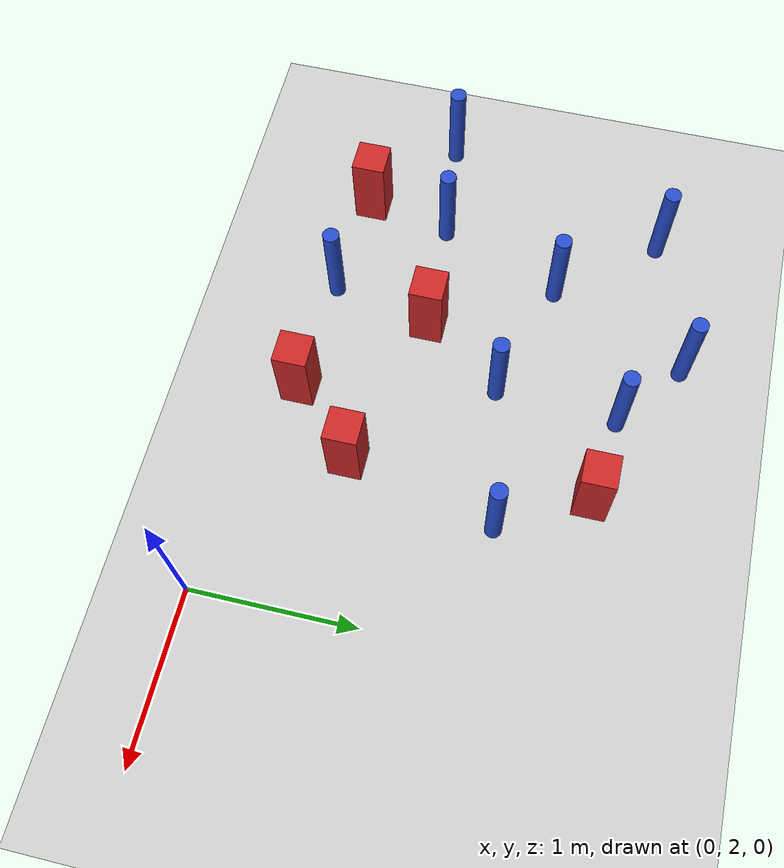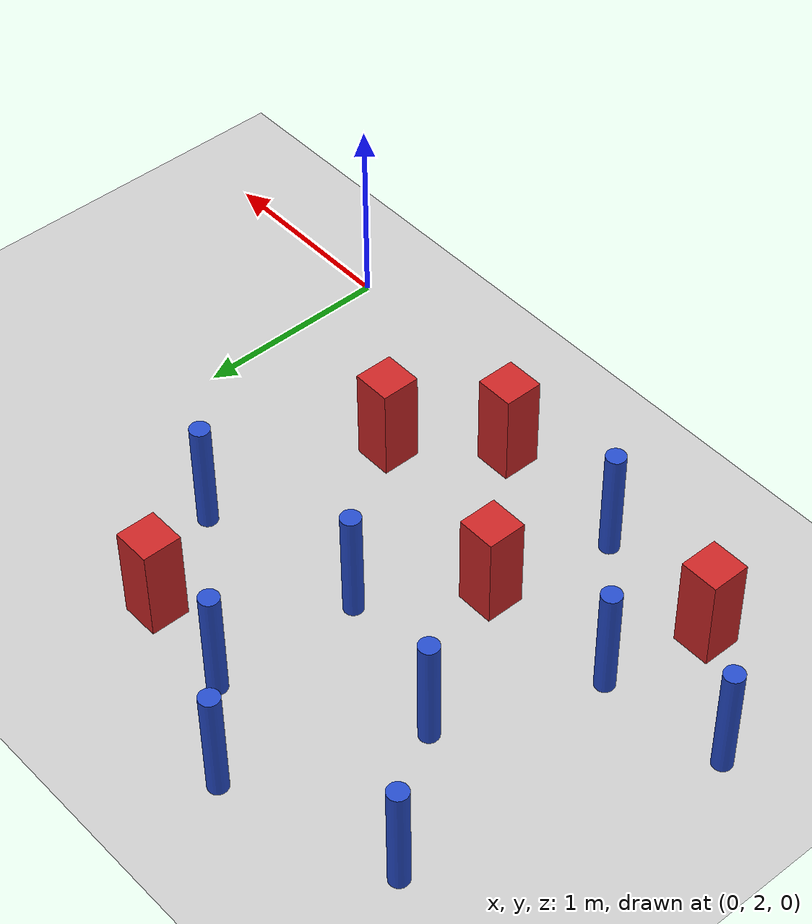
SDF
<sdf version="1.6">
 <world name="default">
  <model name="ground_plane">
   <static>1</static>
   <link name="link">
    <collision name="collision">
     <geometry><plane><normal>0 0 1</normal><size>100 100</size></plane></geometry>
     <surface><friction><ode><mu>100</mu><mu2>50</mu2></ode></friction></surface>
    </collision>
    <visual name="visual">
     <cast_shadows>0</cast_shadows>
     <geometry><plane><normal>0 0 1</normal><size>100 100</size></plane></geometry>
     <material>
      <ambient>1.0 1.0 1.0 1.0</ambient>
      <diffuse>0.8 0.8 0.8 1.0</diffuse>
      <specular>0.01 0.01 0.01 1.000000</specular>
     </material>
    </visual>
   </link>
  </model>
  <model name="pole_obstacle2">
   <static>true</static>
   <pose>-3.29904174645 2.82377356192 -9.47619616065e-06 5.49618799737e-07 2.36310414051e-07 -1.55090534807e-07</pose>
   <link name="link">
    <pose>0 0 0.3 0 -0 0</pose>
    <inertial>
     <mass>1</mass>
     <inertia><ixx>0.145833</ixx><ixy>0</ixy><ixz>0</ixz><iyy>0.145833</iyy><iyz>0</iyz><izz>0.125</izz></inertia>
    </inertial>
    <collision name="collision">
     <geometry><cylinder><radius>0.05</radius><length>.6</length></cylinder></geometry>
    </collision>
    <visual name="visual">
     <geometry><cylinder><radius>0.05</radius><length>.6</length></cylinder></geometry>
     <material>
      <script><name>Gazebo/Blue</name><uri>file://media/materials/scripts/gazebo.material</uri></script>
     </material>
    </visual>
   </link>
  </model>
  <model name="pole_obstacle23">
   <static>true</static>
   <pose>-1.97185046986 4.5103314943 -9.47619616065e-06 5.49618799737e-07 2.36310414064e-07 -1.55090534797e-07</pose>
   <link name="link">
    <pose>0 0 0.3 0 -0 0</pose>
    <inertial>
     <mass>1</mass>
     <inertia><ixx>0.145833</ixx><ixy>0</ixy><ixz>0</ixz><iyy>0.145833</iyy><iyz>0</iyz><izz>0.125</izz></inertia>
    </inertial>
    <collision name="collision">
     <geometry><cylinder><radius>0.05</radius><length>.6</length></cylinder></geometry>
    </collision>
    <visual name="visual">
     <geometry><cylinder><radius>0.05</radius><length>.6</length></cylinder></geometry>
     <material>
      <script><name>Gazebo/Blue</name><uri>file://media/materials/scripts/gazebo.material</uri></script>
     </material>
    </visual>
   </link>
  </model>
  <model name="square_post_obstacle30">
   <static>true</static>
   <pose>-0.958676364007 2.68689497019 -6.11067671241e-07 -5.50515727128e-06 -8.79689657224e-07 2.37013304536e-05</pose>
   <link name="link">
    <pose>0 0 0.25 0 -0 0</pose>
    <inertial>
     <mass>100</mass>
     <inertia>
      <ixx>0.166667</ixx>
      <ixy>0</ixy>
      <ixz>0</ixz>
      <iyy>0.166667</iyy>
      <iyz>0</iyz>
      <izz>0.166667</izz>
     </inertia>
    </inertial>
    <collision name="collision"><geometry><box><size>.2 .2 .5</size></box></geometry></collision>
    <visual name="visual">
     <geometry><box><size>.2 .2 .5</size></box></geometry>
     <material>
      <script><name>Gazebo/Red</name><uri>file://media/materials/scripts/gazebo.material</uri></script>
     </material>
    </visual>
   </link>
  </model>
  <model name="pole_obstacle48">
   <static>true</static>
   <pose>-2.83331847792 4.24327522767 -9.47619616065e-06 5.49618799738e-07 2.3631041406e-07 -1.55090534801e-07</pose>
   <link name="link">
    <pose>0 0 0.3 0 -0 0</pose>
    <inertial>
     <mass>1</mass>
     <inertia><ixx>0.145833</ixx><ixy>0</ixy><ixz>0</ixz><iyy>0.145833</iyy><iyz>0</iyz><izz>0.125</izz></inertia>
    </inertial>
    <collision name="collision">
     <geometry><cylinder><radius>0.05</radius><length>.6</length></cylinder></geometry>
    </collision>
    <visual name="visual">
     <geometry><cylinder><radius>0.05</radius><length>.6</length></cylinder></geometry>
     <material>
      <script><name>Gazebo/Blue</name><uri>file://media/materials/scripts/gazebo.material</uri></script>
     </material>
    </visual>
   </link>
  </model>
  <model name="pole_obstacle68">
   <static>true</static>
   <pose>-1.54842538107 4.18333602211 -9.47619616065e-06 5.49618799737e-07 2.36310414061e-07 -1.550905348e-07</pose>
   <link name="link">
    <pose>0 0 0.3 0 -0 0</pose>
    <inertial>
     <mass>1</mass>
     <inertia><ixx>0.145833</ixx><ixy>0</ixy><ixz>0</ixz><iyy>0.145833</iyy><iyz>0</iyz><izz>0.125</izz></inertia>
    </inertial>
    <collision name="collision">
     <geometry><cylinder><radius>0.05</radius><length>.6</length></cylinder></geometry>
    </collision>
    <visual name="visual">
     <geometry><cylinder><radius>0.05</radius><length>.6</length></cylinder></geometry>
     <material>
      <script><name>Gazebo/Blue</name><uri>file://media/materials/scripts/gazebo.material</uri></script>
     </material>
    </visual>
   </link>
  </model>
  <model name="pole_obstacle76">
   <static>true</static>
   <pose>-2.35872600278 3.66167079802 -9.47619616065e-06 5.49618799737e-07 2.36310414051e-07 -1.55090534807e-07</pose>
   <link name="link">
    <pose>0 0 0.3 0 -0 0</pose>
    <inertial>
     <mass>1</mass>
     <inertia><ixx>0.145833</ixx><ixy>0</ixy><ixz>0</ixz><iyy>0.145833</iyy><iyz>0</iyz><izz>0.125</izz></inertia>
    </inertial>
    <collision name="collision">
     <geometry><cylinder><radius>0.05</radius><length>.6</length></cylinder></geometry>
    </collision>
    <visual name="visual">
     <geometry><cylinder><radius>0.05</radius><length>.6</length></cylinder></geometry>
     <material>
      <script><name>Gazebo/Blue</name><uri>file://media/materials/scripts/gazebo.material</uri></script>
     </material>
    </visual>
   </link>
  </model>
  <model name="square_post_obstacle103">
   <static>true</static>
   <pose>-1.02268616664 4.1152326225 -6.11067671241e-07 -5.50515727128e-06 -8.79689657224e-07 2.37013304536e-05</pose>
   <link name="link">
    <pose>0 0 0.25 0 -0 0</pose>
    <inertial>
     <mass>100</mass>
     <inertia>
      <ixx>0.166667</ixx>
      <ixy>0</ixy>
      <ixz>0</ixz>
      <iyy>0.166667</iyy>
      <iyz>0</iyz>
      <izz>0.166667</izz>
     </inertia>
    </inertial>
    <collision name="collision"><geometry><box><size>.2 .2 .5</size></box></geometry></collision>
    <visual name="visual">
     <geometry><box><size>.2 .2 .5</size></box></geometry>
     <material>
      <script><name>Gazebo/Red</name><uri>file://media/materials/scripts/gazebo.material</uri></script>
     </material>
    </visual>
   </link>
  </model>
  <model name="square_post_obstacle115">
   <static>true</static>
   <pose>-1.96049697644 2.94009619838 -6.11067671241e-07 -5.50515727128e-06 -8.79689657224e-07 2.37013304536e-05</pose>
   <link name="link">
    <pose>0 0 0.25 0 -0 0</pose>
    <inertial>
     <mass>100</mass>
     <inertia>
      <ixx>0.166667</ixx>
      <ixy>0</ixy>
      <ixz>0</ixz>
      <iyy>0.166667</iyy>
      <iyz>0</iyz>
      <izz>0.166667</izz>
     </inertia>
    </inertial>
    <collision name="collision"><geometry><box><size>.2 .2 .5</size></box></geometry></collision>
    <visual name="visual">
     <geometry><box><size>.2 .2 .5</size></box></geometry>
     <material>
      <script><name>Gazebo/Red</name><uri>file://media/materials/scripts/gazebo.material</uri></script>
     </material>
    </visual>
   </link>
  </model>
  <model name="square_post_obstacle120">
   <static>true</static>
   <pose>-1.36187176268 2.28369224164 -6.11067671241e-07 -5.50515727128e-06 -8.79689657224e-07 2.37013304536e-05</pose>
   <link name="link">
    <pose>0 0 0.25 0 -0 0</pose>
    <inertial>
     <mass>100</mass>
     <inertia>
      <ixx>0.166667</ixx>
      <ixy>0</ixy>
      <ixz>0</ixz>
      <iyy>0.166667</iyy>
      <iyz>0</iyz>
      <izz>0.166667</izz>
     </inertia>
    </inertial>
    <collision name="collision"><geometry><box><size>.2 .2 .5</size></box></geometry></collision>
    <visual name="visual">
     <geometry><box><size>.2 .2 .5</size></box></geometry>
     <material>
      <script><name>Gazebo/Red</name><uri>file://media/materials/scripts/gazebo.material</uri></script>
     </material>
    </visual>
   </link>
  </model>
  <model name="pole_obstacle153">
   <static>true</static>
   <pose>-2.09194370085 2.31697124273 -9.47619616065e-06 5.49618799737e-07 2.36310414051e-07 -1.55090534807e-07</pose>
   <link name="link">
    <pose>0 0 0.3 0 -0 0</pose>
    <inertial>
     <mass>1</mass>
     <inertia><ixx>0.145833</ixx><ixy>0</ixy><ixz>0</ixz><iyy>0.145833</iyy><iyz>0</iyz><izz>0.125</izz></inertia>
    </inertial>
    <collision name="collision">
     <geometry><cylinder><radius>0.05</radius><length>.6</length></cylinder></geometry>
    </collision>
    <visual name="visual">
     <geometry><cylinder><radius>0.05</radius><length>.6</length></cylinder></geometry>
     <material>
      <script><name>Gazebo/Blue</name><uri>file://media/materials/scripts/gazebo.material</uri></script>
     </material>
    </visual>
   </link>
  </model>
  <model name="pole_obstacle174">
   <static>true</static>
   <pose>-1.59430343515 3.44132957082 -9.47619616065e-06 5.49618799737e-07 2.36310414062e-07 -1.55090534798e-07</pose>
   <link name="link">
    <pose>0 0 0.3 0 -0 0</pose>
    <inertial>
     <mass>1</mass>
     <inertia><ixx>0.145833</ixx><ixy>0</ixy><ixz>0</ixz><iyy>0.145833</iyy><iyz>0</iyz><izz>0.125</izz></inertia>
    </inertial>
    <collision name="collision">
     <geometry><cylinder><radius>0.05</radius><length>.6</length></cylinder></geometry>
    </collision>
    <visual name="visual">
     <geometry><cylinder><radius>0.05</radius><length>.6</length></cylinder></geometry>
     <material>
      <script><name>Gazebo/Blue</name><uri>file://media/materials/scripts/gazebo.material</uri></script>
     </material>
    </visual>
   </link>
  </model>
  <model name="pole_obstacle196">
   <static>true</static>
   <pose>-2.65962691541 2.90005530496 -9.47619616065e-06 5.49618799737e-07 2.36310414051e-07 -1.55090534807e-07</pose>
   <link name="link">
    <pose>0 0 0.3 0 -0 0</pose>
    <inertial>
     <mass>1</mass>
     <inertia><ixx>0.145833</ixx><ixy>0</ixy><ixz>0</ixz><iyy>0.145833</iyy><iyz>0</iyz><izz>0.125</izz></inertia>
    </inertial>
    <collision name="collision">
     <geometry><cylinder><radius>0.05</radius><length>.6</length></cylinder></geometry>
    </collision>
    <visual name="visual">
     <geometry><cylinder><radius>0.05</radius><length>.6</length></cylinder></geometry>
     <material>
      <script><name>Gazebo/Blue</name><uri>file://media/materials/scripts/gazebo.material</uri></script>
     </material>
    </visual>
   </link>
  </model>
  <model name="square_post_obstacle208">
   <static>true</static>
   <pose>-2.7770328008 2.38598740175 -6.11067671241e-07 -5.50515727128e-06 -8.79689657224e-07 2.37013304536e-05</pose>
   <link name="link">
    <pose>0 0 0.25 0 -0 0</pose>
    <inertial>
     <mass>100</mass>
     <inertia>
      <ixx>0.166667</ixx>
      <ixy>0</ixy>
      <ixz>0</ixz>
      <iyy>0.166667</iyy>
      <iyz>0</iyz>
      <izz>0.166667</izz>
     </inertia>
    </inertial>
    <collision name="collision"><geometry><box><size>.2 .2 .5</size></box></geometry></collision>
    <visual name="visual">
     <geometry><box><size>.2 .2 .5</size></box></geometry>
     <material>
      <script><name>Gazebo/Red</name><uri>file://media/materials/scripts/gazebo.material</uri></script>
     </material>
    </visual>
   </link>
  </model>
  <model name="pole_obstacle223">
   <static>true</static>
   <pose>-0.730952990611 3.60126002078 -9.47619616065e-06 5.49618799737e-07 2.36310414066e-07 -1.55090534797e-07</pose>
   <link name="link">
    <pose>0 0 0.3 0 -0 0</pose>
    <inertial>
     <mass>1</mass>
     <inertia><ixx>0.145833</ixx><ixy>0</ixy><ixz>0</ixz><iyy>0.145833</iyy><iyz>0</iyz><izz>0.125</izz></inertia>
    </inertial>
    <collision name="collision">
     <geometry><cylinder><radius>0.05</radius><length>.6</length></cylinder></geometry>
    </collision>
    <visual name="visual">
     <geometry><cylinder><radius>0.05</radius><length>.6</length></cylinder></geometry>
     <material>
      <script><name>Gazebo/Blue</name><uri>file://media/materials/scripts/gazebo.material</uri></script>
     </material>
    </visual>
   </link>
  </model>
 </world>
</sdf>
